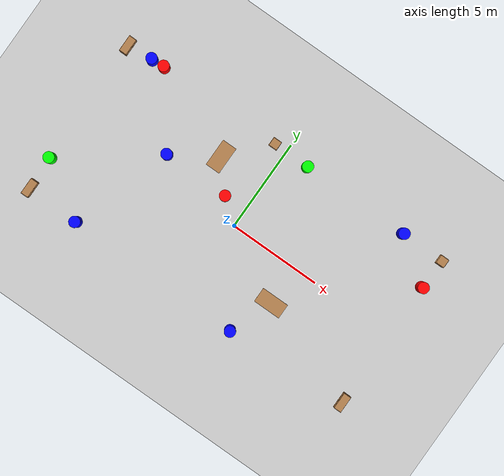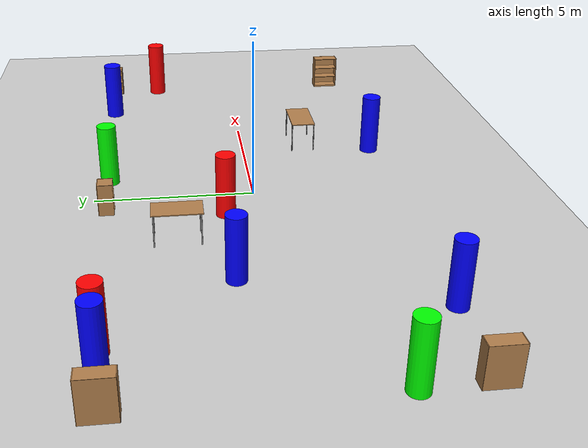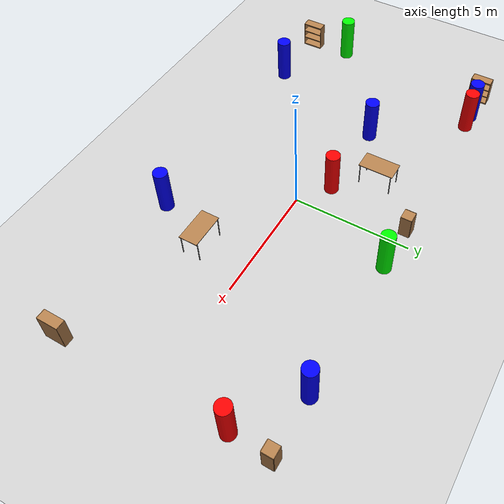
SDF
<sdf version="1.6">
 <world name="default">
  <light name="sun" type="directional">
   <pose>0 0 10 0 -0 0</pose>
   <diffuse>0.8 0.8 0.8 1</diffuse>
   <specular>0.2 0.2 0.2 1</specular>
   <attenuation>
    <range>1000</range>
    <constant>0.9</constant>
    <linear>0.01</linear>
    <quadratic>0.001</quadratic>
   </attenuation>
   <direction>-0.5 0.1 -0.9</direction>
  </light>
  <model name="ground_plane">
   <static>1</static>
   <link name="link">
    <collision name="collision">
     <geometry><plane><normal>0 0 1</normal><size>100 100</size></plane></geometry>
     <surface>
      <contact><collide_bitmask>65535</collide_bitmask></contact>
      <friction><ode><mu>100</mu><mu2>50</mu2></ode></friction>
     </surface>
    </collision>
    <visual name="visual">
     <cast_shadows>0</cast_shadows>
     <geometry><plane><normal>0 0 1</normal><size>100 100</size></plane></geometry>
     <material>
      <script><uri>file://media/materials/scripts/gazebo.material</uri><name>Gazebo/Grey</name></script>
     </material>
    </visual>
   </link>
  </model>
  <gravity>0 0 -9.8</gravity>
  <magnetic_field>6e-06 2.3e-05 -4.2e-05</magnetic_field>
  <atmosphere type="adiabatic"/>
  <physics name="default_physics" default="0" type="ode">
   <max_step_size>0.001</max_step_size>
   <real_time_factor>1</real_time_factor>
   <real_time_update_rate>1000</real_time_update_rate>
  </physics>
  <scene><ambient>0.4 0.4 0.4 1</ambient><background>0.7 0.7 0.7 1</background><shadows>0</shadows></scene>
  <audio><device>default</device></audio>
  <spherical_coordinates>
   <surface_model>EARTH_WGS84</surface_model>
   <latitude_deg>0</latitude_deg>
   <longitude_deg>0</longitude_deg>
   <elevation>0</elevation>
   <heading_deg>0</heading_deg>
  </spherical_coordinates>
  <model name="bookshelf0">
   <static>1</static>
   <link name="link">
    <inertial><mass>1</mass></inertial>
    <collision name="back">
     <pose>0 0.005 0.6 0 -0 0</pose>
     <geometry><box><size>0.9 0.01 1.2</size></box></geometry>
    </collision>
    <visual name="visual1">
     <pose>0 0.005 0.6 0 -0 0</pose>
     <geometry><box><size>0.9 0.01 1.2</size></box></geometry>
     <material>
      <script><uri>file://media/materials/scripts/gazebo.material</uri><name>Gazebo/Wood</name></script>
     </material>
    </visual>
    <collision name="left_side">
     <pose>0.45 -0.195 0.6 0 -0 0</pose>
     <geometry><box><size>0.02 0.4 1.2</size></box></geometry>
    </collision>
    <visual name="visual2">
     <pose>0.45 -0.195 0.6 0 -0 0</pose>
     <geometry><box><size>0.02 0.4 1.2</size></box></geometry>
     <material>
      <script><uri>file://media/materials/scripts/gazebo.material</uri><name>Gazebo/Wood</name></script>
     </material>
    </visual>
    <collision name="right_side">
     <pose>-0.45 -0.195 0.6 0 -0 0</pose>
     <geometry><box><size>0.02 0.4 1.2</size></box></geometry>
    </collision>
    <visual name="visual3">
     <pose>-0.45 -0.195 0.6 0 -0 0</pose>
     <geometry><box><size>0.02 0.4 1.2</size></box></geometry>
     <material>
      <script><uri>file://media/materials/scripts/gazebo.material</uri><name>Gazebo/Wood</name></script>
     </material>
    </visual>
    <collision name="bottom">
     <pose>0 -0.195 0.03 0 -0 0</pose>
     <geometry><box><size>0.88 0.4 0.06</size></box></geometry>
    </collision>
    <visual name="visual4">
     <pose>0 -0.195 0.03 0 -0 0</pose>
     <geometry><box><size>0.88 0.4 0.06</size></box></geometry>
     <material>
      <script><uri>file://media/materials/scripts/gazebo.material</uri><name>Gazebo/Wood</name></script>
     </material>
    </visual>
    <collision name="top">
     <pose>0 -0.195 1.19 0 -0 0</pose>
     <geometry><box><size>0.88 0.4 0.02</size></box></geometry>
    </collision>
    <visual name="visual5">
     <pose>0 -0.195 1.19 0 -0 0</pose>
     <geometry><box><size>0.88 0.4 0.02</size></box></geometry>
     <material>
      <script><uri>file://media/materials/scripts/gazebo.material</uri><name>Gazebo/Wood</name></script>
     </material>
    </visual>
    <collision name="low_shelf">
     <pose>0 -0.195 0.43 0 -0 0</pose>
     <geometry><box><size>0.88 0.4 0.02</size></box></geometry>
    </collision>
    <visual name="visual6">
     <pose>0 -0.195 0.43 0 -0 0</pose>
     <geometry><box><size>0.88 0.4 0.02</size></box></geometry>
     <material>
      <script><uri>file://media/materials/scripts/gazebo.material</uri><name>Gazebo/Wood</name></script>
     </material>
    </visual>
    <collision name="high_shelf">
     <pose>0 -0.195 0.8 0 -0 0</pose>
     <geometry><box><size>0.88 0.4 0.02</size></box></geometry>
    </collision>
    <visual name="visual7">
     <pose>0 -0.195 0.8 0 -0 0</pose>
     <geometry><box><size>0.88 0.4 0.02</size></box></geometry>
     <material>
      <script><uri>file://media/materials/scripts/gazebo.material</uri><name>Gazebo/Wood</name></script>
     </material>
    </visual>
   </link>
   <pose>-9.72657 -4.37218 0 0 -0 1.5708</pose>
  </model>
  <model name="bookshelf3">
   <static>1</static>
   <link name="link">
    <inertial><mass>1</mass></inertial>
    <collision name="back">
     <pose>0 0.005 0.6 0 -0 0</pose>
     <geometry><box><size>0.9 0.01 1.2</size></box></geometry>
    </collision>
    <visual name="visual1">
     <pose>0 0.005 0.6 0 -0 0</pose>
     <geometry><box><size>0.9 0.01 1.2</size></box></geometry>
     <material>
      <script><uri>file://media/materials/scripts/gazebo.material</uri><name>Gazebo/Wood</name></script>
     </material>
    </visual>
    <collision name="left_side">
     <pose>0.45 -0.195 0.6 0 -0 0</pose>
     <geometry><box><size>0.02 0.4 1.2</size></box></geometry>
    </collision>
    <visual name="visual2">
     <pose>0.45 -0.195 0.6 0 -0 0</pose>
     <geometry><box><size>0.02 0.4 1.2</size></box></geometry>
     <material>
      <script><uri>file://media/materials/scripts/gazebo.material</uri><name>Gazebo/Wood</name></script>
     </material>
    </visual>
    <collision name="right_side">
     <pose>-0.45 -0.195 0.6 0 -0 0</pose>
     <geometry><box><size>0.02 0.4 1.2</size></box></geometry>
    </collision>
    <visual name="visual3">
     <pose>-0.45 -0.195 0.6 0 -0 0</pose>
     <geometry><box><size>0.02 0.4 1.2</size></box></geometry>
     <material>
      <script><uri>file://media/materials/scripts/gazebo.material</uri><name>Gazebo/Wood</name></script>
     </material>
    </visual>
    <collision name="bottom">
     <pose>0 -0.195 0.03 0 -0 0</pose>
     <geometry><box><size>0.88 0.4 0.06</size></box></geometry>
    </collision>
    <visual name="visual4">
     <pose>0 -0.195 0.03 0 -0 0</pose>
     <geometry><box><size>0.88 0.4 0.06</size></box></geometry>
     <material>
      <script><uri>file://media/materials/scripts/gazebo.material</uri><name>Gazebo/Wood</name></script>
     </material>
    </visual>
    <collision name="top">
     <pose>0 -0.195 1.19 0 -0 0</pose>
     <geometry><box><size>0.88 0.4 0.02</size></box></geometry>
    </collision>
    <visual name="visual5">
     <pose>0 -0.195 1.19 0 -0 0</pose>
     <geometry><box><size>0.88 0.4 0.02</size></box></geometry>
     <material>
      <script><uri>file://media/materials/scripts/gazebo.material</uri><name>Gazebo/Wood</name></script>
     </material>
    </visual>
    <collision name="low_shelf">
     <pose>0 -0.195 0.43 0 -0 0</pose>
     <geometry><box><size>0.88 0.4 0.02</size></box></geometry>
    </collision>
    <visual name="visual6">
     <pose>0 -0.195 0.43 0 -0 0</pose>
     <geometry><box><size>0.88 0.4 0.02</size></box></geometry>
     <material>
      <script><uri>file://media/materials/scripts/gazebo.material</uri><name>Gazebo/Wood</name></script>
     </material>
    </visual>
    <collision name="high_shelf">
     <pose>0 -0.195 0.8 0 -0 0</pose>
     <geometry><box><size>0.88 0.4 0.02</size></box></geometry>
    </collision>
    <visual name="visual7">
     <pose>0 -0.195 0.8 0 -0 0</pose>
     <geometry><box><size>0.88 0.4 0.02</size></box></geometry>
     <material>
      <script><uri>file://media/materials/scripts/gazebo.material</uri><name>Gazebo/Wood</name></script>
     </material>
    </visual>
   </link>
   <pose>9.76318 -4.11921 0 0 0 -1.57079</pose>
  </model>
  <model name="bookshelf4">
   <static>1</static>
   <link name="link">
    <inertial><mass>1</mass></inertial>
    <collision name="back">
     <pose>0 0.005 0.6 0 -0 0</pose>
     <geometry><box><size>0.9 0.01 1.2</size></box></geometry>
    </collision>
    <visual name="visual1">
     <pose>0 0.005 0.6 0 -0 0</pose>
     <geometry><box><size>0.9 0.01 1.2</size></box></geometry>
     <material>
      <script><uri>file://media/materials/scripts/gazebo.material</uri><name>Gazebo/Wood</name></script>
     </material>
    </visual>
    <collision name="left_side">
     <pose>0.45 -0.195 0.6 0 -0 0</pose>
     <geometry><box><size>0.02 0.4 1.2</size></box></geometry>
    </collision>
    <visual name="visual2">
     <pose>0.45 -0.195 0.6 0 -0 0</pose>
     <geometry><box><size>0.02 0.4 1.2</size></box></geometry>
     <material>
      <script><uri>file://media/materials/scripts/gazebo.material</uri><name>Gazebo/Wood</name></script>
     </material>
    </visual>
    <collision name="right_side">
     <pose>-0.45 -0.195 0.6 0 -0 0</pose>
     <geometry><box><size>0.02 0.4 1.2</size></box></geometry>
    </collision>
    <visual name="visual3">
     <pose>-0.45 -0.195 0.6 0 -0 0</pose>
     <geometry><box><size>0.02 0.4 1.2</size></box></geometry>
     <material>
      <script><uri>file://media/materials/scripts/gazebo.material</uri><name>Gazebo/Wood</name></script>
     </material>
    </visual>
    <collision name="bottom">
     <pose>0 -0.195 0.03 0 -0 0</pose>
     <geometry><box><size>0.88 0.4 0.06</size></box></geometry>
    </collision>
    <visual name="visual4">
     <pose>0 -0.195 0.03 0 -0 0</pose>
     <geometry><box><size>0.88 0.4 0.06</size></box></geometry>
     <material>
      <script><uri>file://media/materials/scripts/gazebo.material</uri><name>Gazebo/Wood</name></script>
     </material>
    </visual>
    <collision name="top">
     <pose>0 -0.195 1.19 0 -0 0</pose>
     <geometry><box><size>0.88 0.4 0.02</size></box></geometry>
    </collision>
    <visual name="visual5">
     <pose>0 -0.195 1.19 0 -0 0</pose>
     <geometry><box><size>0.88 0.4 0.02</size></box></geometry>
     <material>
      <script><uri>file://media/materials/scripts/gazebo.material</uri><name>Gazebo/Wood</name></script>
     </material>
    </visual>
    <collision name="low_shelf">
     <pose>0 -0.195 0.43 0 -0 0</pose>
     <geometry><box><size>0.88 0.4 0.02</size></box></geometry>
    </collision>
    <visual name="visual6">
     <pose>0 -0.195 0.43 0 -0 0</pose>
     <geometry><box><size>0.88 0.4 0.02</size></box></geometry>
     <material>
      <script><uri>file://media/materials/scripts/gazebo.material</uri><name>Gazebo/Wood</name></script>
     </material>
    </visual>
    <collision name="high_shelf">
     <pose>0 -0.195 0.8 0 -0 0</pose>
     <geometry><box><size>0.88 0.4 0.02</size></box></geometry>
    </collision>
    <visual name="visual7">
     <pose>0 -0.195 0.8 0 -0 0</pose>
     <geometry><box><size>0.88 0.4 0.02</size></box></geometry>
     <material>
      <script><uri>file://media/materials/scripts/gazebo.material</uri><name>Gazebo/Wood</name></script>
     </material>
    </visual>
   </link>
   <pose>-9.82487 4.34326 0 0 -0 1.5708</pose>
  </model>
  <model name="cabinet0">
   <static>1</static>
   <link name="cabinet_bottom_plate">
    <inertial>
     <pose>0 0 -1 0 -0 0</pose>
     <inertia><ixx>2.05</ixx><ixy>0</ixy><ixz>0</ixz><iyy>2.05</iyy><iyz>0</iyz><izz>2.05</izz></inertia>
     <mass>25</mass>
    </inertial>
    <collision name="cabinet_bottom_plate_geom">
     <pose>0 0 0.01 0 -0 0</pose>
     <geometry><box><size>0.45 0.45 0.02</size></box></geometry>
    </collision>
    <visual name="cabinet_bottom_plate_geom_visual">
     <pose>0 0 0.01 0 -0 0</pose>
     <geometry><box><size>0.45 0.45 0.02</size></box></geometry>
     <material>
      <script><uri>file://media/materials/scripts/gazebo.material</uri><name>Gazebo/Wood</name></script>
     </material>
    </visual>
    <collision name="cabinet_bottom_plate_geom_cabinet_back_plate">
     <pose>0.235 0 0.51 0 -0 0</pose>
     <geometry><box><size>0.02 0.45 1.02</size></box></geometry>
    </collision>
    <visual name="cabinet_bottom_plate_geom_cabinet_back_plate_visual">
     <pose>0.235 0 0.51 0 -0 0</pose>
     <geometry><box><size>0.02 0.45 1.02</size></box></geometry>
     <material>
      <script><uri>file://media/materials/scripts/gazebo.material</uri><name>Gazebo/Wood</name></script>
     </material>
    </visual>
    <collision name="cabinet_bottom_plate_geom_cabinet_left_plate">
     <pose>0 0.235 0.51 0 -0 0</pose>
     <geometry><box><size>0.45 0.02 1.02</size></box></geometry>
    </collision>
    <visual name="cabinet_bottom_plate_geom_cabinet_left_plate_visual">
     <pose>0 0.235 0.51 0 -0 0</pose>
     <geometry><box><size>0.45 0.02 1.02</size></box></geometry>
     <material>
      <script><uri>file://media/materials/scripts/gazebo.material</uri><name>Gazebo/Wood</name></script>
     </material>
    </visual>
    <collision name="cabinet_bottom_plate_geom_cabinet_middle_plate">
     <pose>0 0 0.51 0 -0 0</pose>
     <geometry><box><size>0.45 0.45 0.02</size></box></geometry>
    </collision>
    <visual name="cabinet_bottom_plate_geom_cabinet_middle_plate_visual">
     <pose>0 0 0.51 0 -0 0</pose>
     <geometry><box><size>0.45 0.45 0.02</size></box></geometry>
     <material>
      <script><uri>file://media/materials/scripts/gazebo.material</uri><name>Gazebo/Wood</name></script>
     </material>
    </visual>
    <collision name="cabinet_bottom_plate_geom_cabinet_right_plate">
     <pose>0 -0.235 0.51 0 -0 0</pose>
     <geometry><box><size>0.45 0.02 1.02</size></box></geometry>
    </collision>
    <visual name="cabinet_bottom_plate_geom_cabinet_right_plate_visual">
     <pose>0 -0.235 0.51 0 -0 0</pose>
     <geometry><box><size>0.45 0.02 1.02</size></box></geometry>
     <material>
      <script><uri>file://media/materials/scripts/gazebo.material</uri><name>Gazebo/Wood</name></script>
     </material>
    </visual>
    <collision name="cabinet_bottom_plate_geom_cabinet_top_plate">
     <pose>0 0 1.01 0 -0 0</pose>
     <geometry><box><size>0.45 0.45 0.02</size></box></geometry>
    </collision>
    <visual name="cabinet_bottom_plate_geom_cabinet_top_plate_visual">
     <pose>0 0 1.01 0 -0 0</pose>
     <geometry><box><size>0.45 0.45 0.02</size></box></geometry>
     <material>
      <script><uri>file://media/materials/scripts/gazebo.material</uri><name>Gazebo/Wood</name></script>
     </material>
    </visual>
   </link>
   <pose>9.58424 4.59301 0 0 -0 0</pose>
  </model>
  <model name="cabinet4">
   <static>1</static>
   <link name="cabinet_bottom_plate">
    <inertial>
     <pose>0 0 -1 0 -0 0</pose>
     <inertia><ixx>2.05</ixx><ixy>0</ixy><ixz>0</ixz><iyy>2.05</iyy><iyz>0</iyz><izz>2.05</izz></inertia>
     <mass>25</mass>
    </inertial>
    <collision name="cabinet_bottom_plate_geom">
     <pose>0 0 0.01 0 -0 0</pose>
     <geometry><box><size>0.45 0.45 0.02</size></box></geometry>
    </collision>
    <visual name="cabinet_bottom_plate_geom_visual">
     <pose>0 0 0.01 0 -0 0</pose>
     <geometry><box><size>0.45 0.45 0.02</size></box></geometry>
     <material>
      <script><uri>file://media/materials/scripts/gazebo.material</uri><name>Gazebo/Wood</name></script>
     </material>
    </visual>
    <collision name="cabinet_bottom_plate_geom_cabinet_back_plate">
     <pose>0.235 0 0.51 0 -0 0</pose>
     <geometry><box><size>0.02 0.45 1.02</size></box></geometry>
    </collision>
    <visual name="cabinet_bottom_plate_geom_cabinet_back_plate_visual">
     <pose>0.235 0 0.51 0 -0 0</pose>
     <geometry><box><size>0.02 0.45 1.02</size></box></geometry>
     <material>
      <script><uri>file://media/materials/scripts/gazebo.material</uri><name>Gazebo/Wood</name></script>
     </material>
    </visual>
    <collision name="cabinet_bottom_plate_geom_cabinet_left_plate">
     <pose>0 0.235 0.51 0 -0 0</pose>
     <geometry><box><size>0.45 0.02 1.02</size></box></geometry>
    </collision>
    <visual name="cabinet_bottom_plate_geom_cabinet_left_plate_visual">
     <pose>0 0.235 0.51 0 -0 0</pose>
     <geometry><box><size>0.45 0.02 1.02</size></box></geometry>
     <material>
      <script><uri>file://media/materials/scripts/gazebo.material</uri><name>Gazebo/Wood</name></script>
     </material>
    </visual>
    <collision name="cabinet_bottom_plate_geom_cabinet_middle_plate">
     <pose>0 0 0.51 0 -0 0</pose>
     <geometry><box><size>0.45 0.45 0.02</size></box></geometry>
    </collision>
    <visual name="cabinet_bottom_plate_geom_cabinet_middle_plate_visual">
     <pose>0 0 0.51 0 -0 0</pose>
     <geometry><box><size>0.45 0.45 0.02</size></box></geometry>
     <material>
      <script><uri>file://media/materials/scripts/gazebo.material</uri><name>Gazebo/Wood</name></script>
     </material>
    </visual>
    <collision name="cabinet_bottom_plate_geom_cabinet_right_plate">
     <pose>0 -0.235 0.51 0 -0 0</pose>
     <geometry><box><size>0.45 0.02 1.02</size></box></geometry>
    </collision>
    <visual name="cabinet_bottom_plate_geom_cabinet_right_plate_visual">
     <pose>0 -0.235 0.51 0 -0 0</pose>
     <geometry><box><size>0.45 0.02 1.02</size></box></geometry>
     <material>
      <script><uri>file://media/materials/scripts/gazebo.material</uri><name>Gazebo/Wood</name></script>
     </material>
    </visual>
    <collision name="cabinet_bottom_plate_geom_cabinet_top_plate">
     <pose>0 0 1.01 0 -0 0</pose>
     <geometry><box><size>0.45 0.45 0.02</size></box></geometry>
    </collision>
    <visual name="cabinet_bottom_plate_geom_cabinet_top_plate_visual">
     <pose>0 0 1.01 0 -0 0</pose>
     <geometry><box><size>0.45 0.45 0.02</size></box></geometry>
     <material>
      <script><uri>file://media/materials/scripts/gazebo.material</uri><name>Gazebo/Wood</name></script>
     </material>
    </visual>
   </link>
   <pose>-0.709182 4.57421 0 0 -0 1.5708</pose>
  </model>
  <model name="table1">
   <static>1</static>
   <link name="link">
    <collision name="surface">
     <pose>0 0 1 0 -0 0</pose>
     <geometry><box><size>1.5 0.8 0.03</size></box></geometry>
     <surface><friction><ode><mu>0.6</mu><mu2>0.6</mu2></ode></friction></surface>
    </collision>
    <visual name="visual1">
     <pose>0 0 1 0 -0 0</pose>
     <geometry><box><size>1.5 0.8 0.03</size></box></geometry>
     <material>
      <script><uri>file://media/materials/scripts/gazebo.material</uri><name>Gazebo/Wood</name></script>
     </material>
    </visual>
    <collision name="front_left_leg">
     <pose>0.68 0.38 0.5 0 -0 0</pose>
     <geometry><cylinder><radius>0.02</radius><length>1</length></cylinder></geometry>
    </collision>
    <visual name="front_left_leg">
     <pose>0.68 0.38 0.5 0 -0 0</pose>
     <geometry><cylinder><radius>0.02</radius><length>1</length></cylinder></geometry>
     <material>
      <script><uri>file://media/materials/scripts/gazebo.material</uri><name>Gazebo/Grey</name></script>
     </material>
    </visual>
    <collision name="front_right_leg">
     <pose>0.68 -0.38 0.5 0 -0 0</pose>
     <geometry><cylinder><radius>0.02</radius><length>1</length></cylinder></geometry>
    </collision>
    <visual name="front_right_leg">
     <pose>0.68 -0.38 0.5 0 -0 0</pose>
     <geometry><cylinder><radius>0.02</radius><length>1</length></cylinder></geometry>
     <material>
      <script><uri>file://media/materials/scripts/gazebo.material</uri><name>Gazebo/Grey</name></script>
     </material>
    </visual>
    <collision name="back_right_leg">
     <pose>-0.68 -0.38 0.5 0 -0 0</pose>
     <geometry><cylinder><radius>0.02</radius><length>1</length></cylinder></geometry>
    </collision>
    <visual name="back_right_leg">
     <pose>-0.68 -0.38 0.5 0 -0 0</pose>
     <geometry><cylinder><radius>0.02</radius><length>1</length></cylinder></geometry>
     <material>
      <script><uri>file://media/materials/scripts/gazebo.material</uri><name>Gazebo/Grey</name></script>
     </material>
    </visual>
    <collision name="back_left_leg">
     <pose>-0.68 0.38 0.5 0 -0 0</pose>
     <geometry><cylinder><radius>0.02</radius><length>1</length></cylinder></geometry>
    </collision>
    <visual name="back_left_leg">
     <pose>-0.68 0.38 0.5 0 -0 0</pose>
     <geometry><cylinder><radius>0.02</radius><length>1</length></cylinder></geometry>
     <material>
      <script><uri>file://media/materials/scripts/gazebo.material</uri><name>Gazebo/Grey</name></script>
     </material>
    </visual>
   </link>
   <pose>3.74399 -2.10361 0 0 -0 0</pose>
  </model>
  <model name="table2">
   <static>1</static>
   <link name="link">
    <collision name="surface">
     <pose>0 0 1 0 -0 0</pose>
     <geometry><box><size>1.5 0.8 0.03</size></box></geometry>
     <surface><friction><ode><mu>0.6</mu><mu2>0.6</mu2></ode></friction></surface>
    </collision>
    <visual name="visual1">
     <pose>0 0 1 0 -0 0</pose>
     <geometry><box><size>1.5 0.8 0.03</size></box></geometry>
     <material>
      <script><uri>file://media/materials/scripts/gazebo.material</uri><name>Gazebo/Wood</name></script>
     </material>
    </visual>
    <collision name="front_left_leg">
     <pose>0.68 0.38 0.5 0 -0 0</pose>
     <geometry><cylinder><radius>0.02</radius><length>1</length></cylinder></geometry>
    </collision>
    <visual name="front_left_leg">
     <pose>0.68 0.38 0.5 0 -0 0</pose>
     <geometry><cylinder><radius>0.02</radius><length>1</length></cylinder></geometry>
     <material>
      <script><uri>file://media/materials/scripts/gazebo.material</uri><name>Gazebo/Grey</name></script>
     </material>
    </visual>
    <collision name="front_right_leg">
     <pose>0.68 -0.38 0.5 0 -0 0</pose>
     <geometry><cylinder><radius>0.02</radius><length>1</length></cylinder></geometry>
    </collision>
    <visual name="front_right_leg">
     <pose>0.68 -0.38 0.5 0 -0 0</pose>
     <geometry><cylinder><radius>0.02</radius><length>1</length></cylinder></geometry>
     <material>
      <script><uri>file://media/materials/scripts/gazebo.material</uri><name>Gazebo/Grey</name></script>
     </material>
    </visual>
    <collision name="back_right_leg">
     <pose>-0.68 -0.38 0.5 0 -0 0</pose>
     <geometry><cylinder><radius>0.02</radius><length>1</length></cylinder></geometry>
    </collision>
    <visual name="back_right_leg">
     <pose>-0.68 -0.38 0.5 0 -0 0</pose>
     <geometry><cylinder><radius>0.02</radius><length>1</length></cylinder></geometry>
     <material>
      <script><uri>file://media/materials/scripts/gazebo.material</uri><name>Gazebo/Grey</name></script>
     </material>
    </visual>
    <collision name="back_left_leg">
     <pose>-0.68 0.38 0.5 0 -0 0</pose>
     <geometry><cylinder><radius>0.02</radius><length>1</length></cylinder></geometry>
    </collision>
    <visual name="back_left_leg">
     <pose>-0.68 0.38 0.5 0 -0 0</pose>
     <geometry><cylinder><radius>0.02</radius><length>1</length></cylinder></geometry>
     <material>
      <script><uri>file://media/materials/scripts/gazebo.material</uri><name>Gazebo/Grey</name></script>
     </material>
    </visual>
   </link>
   <pose>-2.56034 2.47234 0 0 -0 1.5708</pose>
  </model>
  <model name="red0">
   <link name="link">
    <pose>-0.202221 0.506091 0 0 -0 0</pose>
    <inertial>
     <mass>1</mass>
     <inertia><ixx>0.145833</ixx><ixy>0</ixy><ixz>0</ixz><iyy>0.145833</iyy><iyz>0</iyz><izz>0.125</izz></inertia>
    </inertial>
    <visual name="visual">
     <geometry><cylinder><radius>0.3</radius><length>2</length></cylinder></geometry>
     <material>
      <script><name>Gazebo/Grey</name><uri>file://media/materials/scripts/gazebo.material</uri></script>
      <ambient>1 0 0 1</ambient>
      <diffuse>0.7 0.7 0.7 1</diffuse>
      <specular>0.01 0.01 0.01 1</specular>
      <emissive>0 0 0 1</emissive>
      <shader type="vertex"><normal_map>__default__</normal_map></shader>
     </material>
    </visual>
    <collision name="collision">
     <geometry><cylinder><radius>0.3</radius><length>2</length></cylinder></geometry>
     <surface>
      <friction>
       <ode><mu>1</mu><mu2>1</mu2><fdir1>0 0 0</fdir1><slip1>0</slip1><slip2>0</slip2></ode>
       <torsional>
        <coefficient>1</coefficient>
        <patch_radius>0</patch_radius>
        <surface_radius>0</surface_radius>
        <use_patch_radius>1</use_patch_radius>
        <ode><slip>0</slip></ode>
       </torsional>
      </friction>
      <bounce><restitution_coefficient>0</restitution_coefficient><threshold>1e+06</threshold></bounce>
      <contact>
       <collide_without_contact>0</collide_without_contact>
       <collide_without_contact_bitmask>1</collide_without_contact_bitmask>
       <collide_bitmask>1</collide_bitmask>
       <ode>
        <soft_cfm>0</soft_cfm>
        <soft_erp>0.2</soft_erp>
        <kp>1e+13</kp>
        <kd>1</kd>
        <max_vel>0.01</max_vel>
        <min_depth>0</min_depth>
       </ode>
       <bullet>
        <split_impulse>1</split_impulse>
        <split_impulse_penetration_threshold>-0.01</split_impulse_penetration_threshold>
        <soft_cfm>0</soft_cfm>
        <soft_erp>0.2</soft_erp>
        <kp>1e+13</kp>
        <kd>1</kd>
       </bullet>
      </contact>
     </surface>
    </collision>
   </link>
   <static>0</static>
   <pose>-1.05721 0.467525 0.999991 0 -0 4e-05</pose>
  </model>
  <model name="red3">
   <link name="link">
    <pose>-0.202221 0.506091 0 0 -0 0</pose>
    <inertial>
     <mass>1</mass>
     <inertia><ixx>0.145833</ixx><ixy>0</ixy><ixz>0</ixz><iyy>0.145833</iyy><iyz>0</iyz><izz>0.125</izz></inertia>
    </inertial>
    <visual name="visual">
     <geometry><cylinder><radius>0.3</radius><length>2</length></cylinder></geometry>
     <material>
      <script><name>Gazebo/Grey</name><uri>file://media/materials/scripts/gazebo.material</uri></script>
      <ambient>1 0 0 1</ambient>
      <diffuse>0.7 0.7 0.7 1</diffuse>
      <specular>0.01 0.01 0.01 1</specular>
      <emissive>0 0 0 1</emissive>
      <shader type="vertex"><normal_map>__default__</normal_map></shader>
     </material>
    </visual>
    <collision name="collision">
     <geometry><cylinder><radius>0.3</radius><length>2</length></cylinder></geometry>
     <surface>
      <friction>
       <ode><mu>1</mu><mu2>1</mu2><fdir1>0 0 0</fdir1><slip1>0</slip1><slip2>0</slip2></ode>
       <torsional>
        <coefficient>1</coefficient>
        <patch_radius>0</patch_radius>
        <surface_radius>0</surface_radius>
        <use_patch_radius>1</use_patch_radius>
        <ode><slip>0</slip></ode>
       </torsional>
      </friction>
      <bounce><restitution_coefficient>0</restitution_coefficient><threshold>1e+06</threshold></bounce>
      <contact>
       <collide_without_contact>0</collide_without_contact>
       <collide_without_contact_bitmask>1</collide_without_contact_bitmask>
       <collide_bitmask>1</collide_bitmask>
       <ode>
        <soft_cfm>0</soft_cfm>
        <soft_erp>0.2</soft_erp>
        <kp>1e+13</kp>
        <kd>1</kd>
        <max_vel>0.01</max_vel>
        <min_depth>0</min_depth>
       </ode>
       <bullet>
        <split_impulse>1</split_impulse>
        <split_impulse_penetration_threshold>-0.01</split_impulse_penetration_threshold>
        <soft_cfm>0</soft_cfm>
        <soft_erp>0.2</soft_erp>
        <kp>1e+13</kp>
        <kd>1</kd>
       </bullet>
      </contact>
     </surface>
    </collision>
   </link>
   <static>0</static>
   <pose>-7.30914 3.99509 0.999991 0 -0 2.5e-05</pose>
  </model>
  <model name="red5">
   <link name="link">
    <pose>-0.202221 0.506091 0 0 -0 0</pose>
    <inertial>
     <mass>1</mass>
     <inertia><ixx>0.145833</ixx><ixy>0</ixy><ixz>0</ixz><iyy>0.145833</iyy><iyz>0</iyz><izz>0.125</izz></inertia>
    </inertial>
    <visual name="visual">
     <geometry><cylinder><radius>0.3</radius><length>2</length></cylinder></geometry>
     <material>
      <script><name>Gazebo/Grey</name><uri>file://media/materials/scripts/gazebo.material</uri></script>
      <ambient>1 0 0 1</ambient>
      <diffuse>0.7 0.7 0.7 1</diffuse>
      <specular>0.01 0.01 0.01 1</specular>
      <emissive>0 0 0 1</emissive>
      <shader type="vertex"><normal_map>__default__</normal_map></shader>
     </material>
    </visual>
    <collision name="collision">
     <geometry><cylinder><radius>0.3</radius><length>2</length></cylinder></geometry>
     <surface>
      <friction>
       <ode><mu>1</mu><mu2>1</mu2><fdir1>0 0 0</fdir1><slip1>0</slip1><slip2>0</slip2></ode>
       <torsional>
        <coefficient>1</coefficient>
        <patch_radius>0</patch_radius>
        <surface_radius>0</surface_radius>
        <use_patch_radius>1</use_patch_radius>
        <ode><slip>0</slip></ode>
       </torsional>
      </friction>
      <bounce><restitution_coefficient>0</restitution_coefficient><threshold>1e+06</threshold></bounce>
      <contact>
       <collide_without_contact>0</collide_without_contact>
       <collide_without_contact_bitmask>1</collide_without_contact_bitmask>
       <collide_bitmask>1</collide_bitmask>
       <ode>
        <soft_cfm>0</soft_cfm>
        <soft_erp>0.2</soft_erp>
        <kp>1e+13</kp>
        <kd>1</kd>
        <max_vel>0.01</max_vel>
        <min_depth>0</min_depth>
       </ode>
       <bullet>
        <split_impulse>1</split_impulse>
        <split_impulse_penetration_threshold>-0.01</split_impulse_penetration_threshold>
        <soft_cfm>0</soft_cfm>
        <soft_erp>0.2</soft_erp>
        <kp>1e+13</kp>
        <kd>1</kd>
       </bullet>
      </contact>
     </surface>
    </collision>
   </link>
   <static>0</static>
   <pose>9.71341 2.42672 0.999993 0 -0 2e-05</pose>
  </model>
  <model name="green4">
   <link name="link">
    <inertial>
     <mass>1</mass>
     <inertia><ixx>0.145833</ixx><ixy>0</ixy><ixz>0</ixz><iyy>0.145833</iyy><iyz>0</iyz><izz>0.125</izz></inertia>
    </inertial>
    <visual name="visual">
     <geometry><cylinder><radius>0.3</radius><length>2</length></cylinder></geometry>
     <material>
      <script><name>Gazebo/Grey</name><uri>file://media/materials/scripts/gazebo.material</uri></script>
      <ambient>0 1 0 1</ambient>
      <diffuse>0.7 0.7 0.7 1</diffuse>
      <specular>0.01 0.01 0.01 1</specular>
      <emissive>0 0 0 1</emissive>
      <shader type="vertex"><normal_map>__default__</normal_map></shader>
     </material>
    </visual>
    <collision name="collision">
     <geometry><cylinder><radius>0.3</radius><length>2</length></cylinder></geometry>
     <surface>
      <friction>
       <ode><mu>1</mu><mu2>1</mu2><fdir1>0 0 0</fdir1><slip1>0</slip1><slip2>0</slip2></ode>
       <torsional>
        <coefficient>1</coefficient>
        <patch_radius>0</patch_radius>
        <surface_radius>0</surface_radius>
        <use_patch_radius>1</use_patch_radius>
        <ode><slip>0</slip></ode>
       </torsional>
      </friction>
      <bounce><restitution_coefficient>0</restitution_coefficient><threshold>1e+06</threshold></bounce>
      <contact>
       <collide_without_contact>0</collide_without_contact>
       <collide_without_contact_bitmask>1</collide_without_contact_bitmask>
       <collide_bitmask>1</collide_bitmask>
       <ode>
        <soft_cfm>0</soft_cfm>
        <soft_erp>0.2</soft_erp>
        <kp>1e+13</kp>
        <kd>1</kd>
        <max_vel>0.01</max_vel>
        <min_depth>0</min_depth>
       </ode>
       <bullet>
        <split_impulse>1</split_impulse>
        <split_impulse_penetration_threshold>-0.01</split_impulse_penetration_threshold>
        <soft_cfm>0</soft_cfm>
        <soft_erp>0.2</soft_erp>
        <kp>1e+13</kp>
        <kd>1</kd>
       </bullet>
      </contact>
     </surface>
    </collision>
   </link>
   <static>0</static>
   <pose>-9.56899 -2.54475 0.999991 0 -0 4.1e-05</pose>
  </model>
  <model name="green6">
   <link name="link">
    <inertial>
     <mass>1</mass>
     <inertia><ixx>0.145833</ixx><ixy>0</ixy><ixz>0</ixz><iyy>0.145833</iyy><iyz>0</iyz><izz>0.125</izz></inertia>
    </inertial>
    <visual name="visual">
     <geometry><cylinder><radius>0.3</radius><length>2</length></cylinder></geometry>
     <material>
      <script><name>Gazebo/Grey</name><uri>file://media/materials/scripts/gazebo.material</uri></script>
      <ambient>0 1 0 1</ambient>
      <diffuse>0.7 0.7 0.7 1</diffuse>
      <specular>0.01 0.01 0.01 1</specular>
      <emissive>0 0 0 1</emissive>
      <shader type="vertex"><normal_map>__default__</normal_map></shader>
     </material>
    </visual>
    <collision name="collision">
     <geometry><cylinder><radius>0.3</radius><length>2</length></cylinder></geometry>
     <surface>
      <friction>
       <ode><mu>1</mu><mu2>1</mu2><fdir1>0 0 0</fdir1><slip1>0</slip1><slip2>0</slip2></ode>
       <torsional>
        <coefficient>1</coefficient>
        <patch_radius>0</patch_radius>
        <surface_radius>0</surface_radius>
        <use_patch_radius>1</use_patch_radius>
        <ode><slip>0</slip></ode>
       </torsional>
      </friction>
      <bounce><restitution_coefficient>0</restitution_coefficient><threshold>1e+06</threshold></bounce>
      <contact>
       <collide_without_contact>0</collide_without_contact>
       <collide_without_contact_bitmask>1</collide_without_contact_bitmask>
       <collide_bitmask>1</collide_bitmask>
       <ode>
        <soft_cfm>0</soft_cfm>
        <soft_erp>0.2</soft_erp>
        <kp>1e+13</kp>
        <kd>1</kd>
        <max_vel>0.01</max_vel>
        <min_depth>0</min_depth>
       </ode>
       <bullet>
        <split_impulse>1</split_impulse>
        <split_impulse_penetration_threshold>-0.01</split_impulse_penetration_threshold>
        <soft_cfm>0</soft_cfm>
        <soft_erp>0.2</soft_erp>
        <kp>1e+13</kp>
        <kd>1</kd>
       </bullet>
      </contact>
     </surface>
    </collision>
   </link>
   <static>0</static>
   <pose>1.29244 4.55575 0.999991 0 -0 1.57245</pose>
  </model>
  <model name="blue0">
   <link name="link">
    <inertial>
     <mass>1</mass>
     <inertia><ixx>0.145833</ixx><ixy>0</ixy><ixz>0</ixz><iyy>0.145833</iyy><iyz>0</iyz><izz>0.125</izz></inertia>
    </inertial>
    <visual name="visual">
     <geometry><cylinder><radius>0.3</radius><length>2</length></cylinder></geometry>
     <material>
      <script><name>Gazebo/Grey</name><uri>file://media/materials/scripts/gazebo.material</uri></script>
      <ambient>0 0 1 1</ambient>
      <diffuse>0.7 0.7 0.7 1</diffuse>
      <specular>0.01 0.01 0.01 1</specular>
      <emissive>0 0 0 1</emissive>
      <shader type="vertex"><normal_map>__default__</normal_map></shader>
     </material>
    </visual>
    <collision name="collision">
     <geometry><cylinder><radius>0.2</radius><length>2</length></cylinder></geometry>
     <surface>
      <friction>
       <ode><mu>1</mu><mu2>1</mu2><fdir1>0 0 0</fdir1><slip1>0</slip1><slip2>0</slip2></ode>
       <torsional>
        <coefficient>1</coefficient>
        <patch_radius>0</patch_radius>
        <surface_radius>0</surface_radius>
        <use_patch_radius>1</use_patch_radius>
        <ode><slip>0</slip></ode>
       </torsional>
      </friction>
      <bounce><restitution_coefficient>0</restitution_coefficient><threshold>1e+06</threshold></bounce>
      <contact>
       <collide_without_contact>0</collide_without_contact>
       <collide_without_contact_bitmask>1</collide_without_contact_bitmask>
       <collide_bitmask>1</collide_bitmask>
       <ode>
        <soft_cfm>0</soft_cfm>
        <soft_erp>0.2</soft_erp>
        <kp>1e+13</kp>
        <kd>1</kd>
        <max_vel>0.01</max_vel>
        <min_depth>0</min_depth>
       </ode>
       <bullet>
        <split_impulse>1</split_impulse>
        <split_impulse_penetration_threshold>-0.01</split_impulse_penetration_threshold>
        <soft_cfm>0</soft_cfm>
        <soft_erp>0.2</soft_erp>
        <kp>1e+13</kp>
        <kd>1</kd>
       </bullet>
      </contact>
     </surface>
    </collision>
   </link>
   <static>0</static>
   <pose>2.86132 -4.43525 0.99999 -0 -0 -0.003496</pose>
  </model>
  <model name="blue1">
   <link name="link">
    <inertial>
     <mass>1</mass>
     <inertia><ixx>0.145833</ixx><ixy>0</ixy><ixz>0</ixz><iyy>0.145833</iyy><iyz>0</iyz><izz>0.125</izz></inertia>
    </inertial>
    <visual name="visual">
     <geometry><cylinder><radius>0.3</radius><length>2</length></cylinder></geometry>
     <material>
      <script><name>Gazebo/Grey</name><uri>file://media/materials/scripts/gazebo.material</uri></script>
      <ambient>0 0 1 1</ambient>
      <diffuse>0.7 0.7 0.7 1</diffuse>
      <specular>0.01 0.01 0.01 1</specular>
      <emissive>0 0 0 1</emissive>
      <shader type="vertex"><normal_map>__default__</normal_map></shader>
     </material>
    </visual>
    <collision name="collision">
     <geometry><cylinder><radius>0.2</radius><length>2</length></cylinder></geometry>
     <surface>
      <friction>
       <ode><mu>1</mu><mu2>1</mu2><fdir1>0 0 0</fdir1><slip1>0</slip1><slip2>0</slip2></ode>
       <torsional>
        <coefficient>1</coefficient>
        <patch_radius>0</patch_radius>
        <surface_radius>0</surface_radius>
        <use_patch_radius>1</use_patch_radius>
        <ode><slip>0</slip></ode>
       </torsional>
      </friction>
      <bounce><restitution_coefficient>0</restitution_coefficient><threshold>1e+06</threshold></bounce>
      <contact>
       <collide_without_contact>0</collide_without_contact>
       <collide_without_contact_bitmask>1</collide_without_contact_bitmask>
       <collide_bitmask>1</collide_bitmask>
       <ode>
        <soft_cfm>0</soft_cfm>
        <soft_erp>0.2</soft_erp>
        <kp>1e+13</kp>
        <kd>1</kd>
        <max_vel>0.01</max_vel>
        <min_depth>0</min_depth>
       </ode>
       <bullet>
        <split_impulse>1</split_impulse>
        <split_impulse_penetration_threshold>-0.01</split_impulse_penetration_threshold>
        <soft_cfm>0</soft_cfm>
        <soft_erp>0.2</soft_erp>
        <kp>1e+13</kp>
        <kd>1</kd>
       </bullet>
      </contact>
     </surface>
    </collision>
   </link>
   <static>0</static>
   <pose>7.16639 4.59438 0.999995 0 0 -0.002921</pose>
  </model>
  <model name="blue3">
   <link name="link">
    <inertial>
     <mass>1</mass>
     <inertia><ixx>0.145833</ixx><ixy>0</ixy><ixz>0</ixz><iyy>0.145833</iyy><iyz>0</iyz><izz>0.125</izz></inertia>
    </inertial>
    <visual name="visual">
     <geometry><cylinder><radius>0.3</radius><length>2</length></cylinder></geometry>
     <material>
      <script><name>Gazebo/Grey</name><uri>file://media/materials/scripts/gazebo.material</uri></script>
      <ambient>0 0 1 1</ambient>
      <diffuse>0.7 0.7 0.7 1</diffuse>
      <specular>0.01 0.01 0.01 1</specular>
      <emissive>0 0 0 1</emissive>
      <shader type="vertex"><normal_map>__default__</normal_map></shader>
     </material>
    </visual>
    <collision name="collision">
     <geometry><cylinder><radius>0.2</radius><length>2</length></cylinder></geometry>
     <surface>
      <friction>
       <ode><mu>1</mu><mu2>1</mu2><fdir1>0 0 0</fdir1><slip1>0</slip1><slip2>0</slip2></ode>
       <torsional>
        <coefficient>1</coefficient>
        <patch_radius>0</patch_radius>
        <surface_radius>0</surface_radius>
        <use_patch_radius>1</use_patch_radius>
        <ode><slip>0</slip></ode>
       </torsional>
      </friction>
      <bounce><restitution_coefficient>0</restitution_coefficient><threshold>1e+06</threshold></bounce>
      <contact>
       <collide_without_contact>0</collide_without_contact>
       <collide_without_contact_bitmask>1</collide_without_contact_bitmask>
       <collide_bitmask>1</collide_bitmask>
       <ode>
        <soft_cfm>0</soft_cfm>
        <soft_erp>0.2</soft_erp>
        <kp>1e+13</kp>
        <kd>1</kd>
        <max_vel>0.01</max_vel>
        <min_depth>0</min_depth>
       </ode>
       <bullet>
        <split_impulse>1</split_impulse>
        <split_impulse_penetration_threshold>-0.01</split_impulse_penetration_threshold>
        <soft_cfm>0</soft_cfm>
        <soft_erp>0.2</soft_erp>
        <kp>1e+13</kp>
        <kd>1</kd>
       </bullet>
      </contact>
     </surface>
    </collision>
   </link>
   <static>0</static>
   <pose>-6.65146 -4.43814 0.99999 -0 -0 -0.003592</pose>
  </model>
  <model name="blue4">
   <link name="link">
    <inertial>
     <mass>1</mass>
     <inertia><ixx>0.145833</ixx><ixy>0</ixy><ixz>0</ixz><iyy>0.145833</iyy><iyz>0</iyz><izz>0.125</izz></inertia>
    </inertial>
    <visual name="visual">
     <geometry><cylinder><radius>0.3</radius><length>2</length></cylinder></geometry>
     <material>
      <script><name>Gazebo/Grey</name><uri>file://media/materials/scripts/gazebo.material</uri></script>
      <ambient>0 0 1 1</ambient>
      <diffuse>0.7 0.7 0.7 1</diffuse>
      <specular>0.01 0.01 0.01 1</specular>
      <emissive>0 0 0 1</emissive>
      <shader type="vertex"><normal_map>__default__</normal_map></shader>
     </material>
    </visual>
    <collision name="collision">
     <geometry><cylinder><radius>0.2</radius><length>2</length></cylinder></geometry>
     <surface>
      <friction>
       <ode><mu>1</mu><mu2>1</mu2><fdir1>0 0 0</fdir1><slip1>0</slip1><slip2>0</slip2></ode>
       <torsional>
        <coefficient>1</coefficient>
        <patch_radius>0</patch_radius>
        <surface_radius>0</surface_radius>
        <use_patch_radius>1</use_patch_radius>
        <ode><slip>0</slip></ode>
       </torsional>
      </friction>
      <bounce><restitution_coefficient>0</restitution_coefficient><threshold>1e+06</threshold></bounce>
      <contact>
       <collide_without_contact>0</collide_without_contact>
       <collide_without_contact_bitmask>1</collide_without_contact_bitmask>
       <collide_bitmask>1</collide_bitmask>
       <ode>
        <soft_cfm>0</soft_cfm>
        <soft_erp>0.2</soft_erp>
        <kp>1e+13</kp>
        <kd>1</kd>
        <max_vel>0.01</max_vel>
        <min_depth>0</min_depth>
       </ode>
       <bullet>
        <split_impulse>1</split_impulse>
        <split_impulse_penetration_threshold>-0.01</split_impulse_penetration_threshold>
        <soft_cfm>0</soft_cfm>
        <soft_erp>0.2</soft_erp>
        <kp>1e+13</kp>
        <kd>1</kd>
       </bullet>
      </contact>
     </surface>
    </collision>
   </link>
   <static>0</static>
   <pose>-4.85144 0.989812 0.999994 -0 -0 -0.003378</pose>
  </model>
  <model name="blue5">
   <link name="link">
    <inertial>
     <mass>1</mass>
     <inertia><ixx>0.145833</ixx><ixy>0</ixy><ixz>0</ixz><iyy>0.145833</iyy><iyz>0</iyz><izz>0.125</izz></inertia>
    </inertial>
    <visual name="visual">
     <geometry><cylinder><radius>0.3</radius><length>2</length></cylinder></geometry>
     <material>
      <script><name>Gazebo/Grey</name><uri>file://media/materials/scripts/gazebo.material</uri></script>
      <ambient>0 0 1 1</ambient>
      <diffuse>0.7 0.7 0.7 1</diffuse>
      <specular>0.01 0.01 0.01 1</specular>
      <emissive>0 0 0 1</emissive>
      <shader type="vertex"><normal_map>__default__</normal_map></shader>
     </material>
    </visual>
    <collision name="collision">
     <geometry><cylinder><radius>0.2</radius><length>2</length></cylinder></geometry>
     <surface>
      <friction>
       <ode><mu>1</mu><mu2>1</mu2><fdir1>0 0 0</fdir1><slip1>0</slip1><slip2>0</slip2></ode>
       <torsional>
        <coefficient>1</coefficient>
        <patch_radius>0</patch_radius>
        <surface_radius>0</surface_radius>
        <use_patch_radius>1</use_patch_radius>
        <ode><slip>0</slip></ode>
       </torsional>
      </friction>
      <bounce><restitution_coefficient>0</restitution_coefficient><threshold>1e+06</threshold></bounce>
      <contact>
       <collide_without_contact>0</collide_without_contact>
       <collide_without_contact_bitmask>1</collide_without_contact_bitmask>
       <collide_bitmask>1</collide_bitmask>
       <ode>
        <soft_cfm>0</soft_cfm>
        <soft_erp>0.2</soft_erp>
        <kp>1e+13</kp>
        <kd>1</kd>
        <max_vel>0.01</max_vel>
        <min_depth>0</min_depth>
       </ode>
       <bullet>
        <split_impulse>1</split_impulse>
        <split_impulse_penetration_threshold>-0.01</split_impulse_penetration_threshold>
        <soft_cfm>0</soft_cfm>
        <soft_erp>0.2</soft_erp>
        <kp>1e+13</kp>
        <kd>1</kd>
       </bullet>
      </contact>
     </surface>
    </collision>
   </link>
   <static>0</static>
   <pose>-8.22501 4.46838 0.999996 0 0 -0.001794</pose>
  </model>
 </world>
</sdf>
